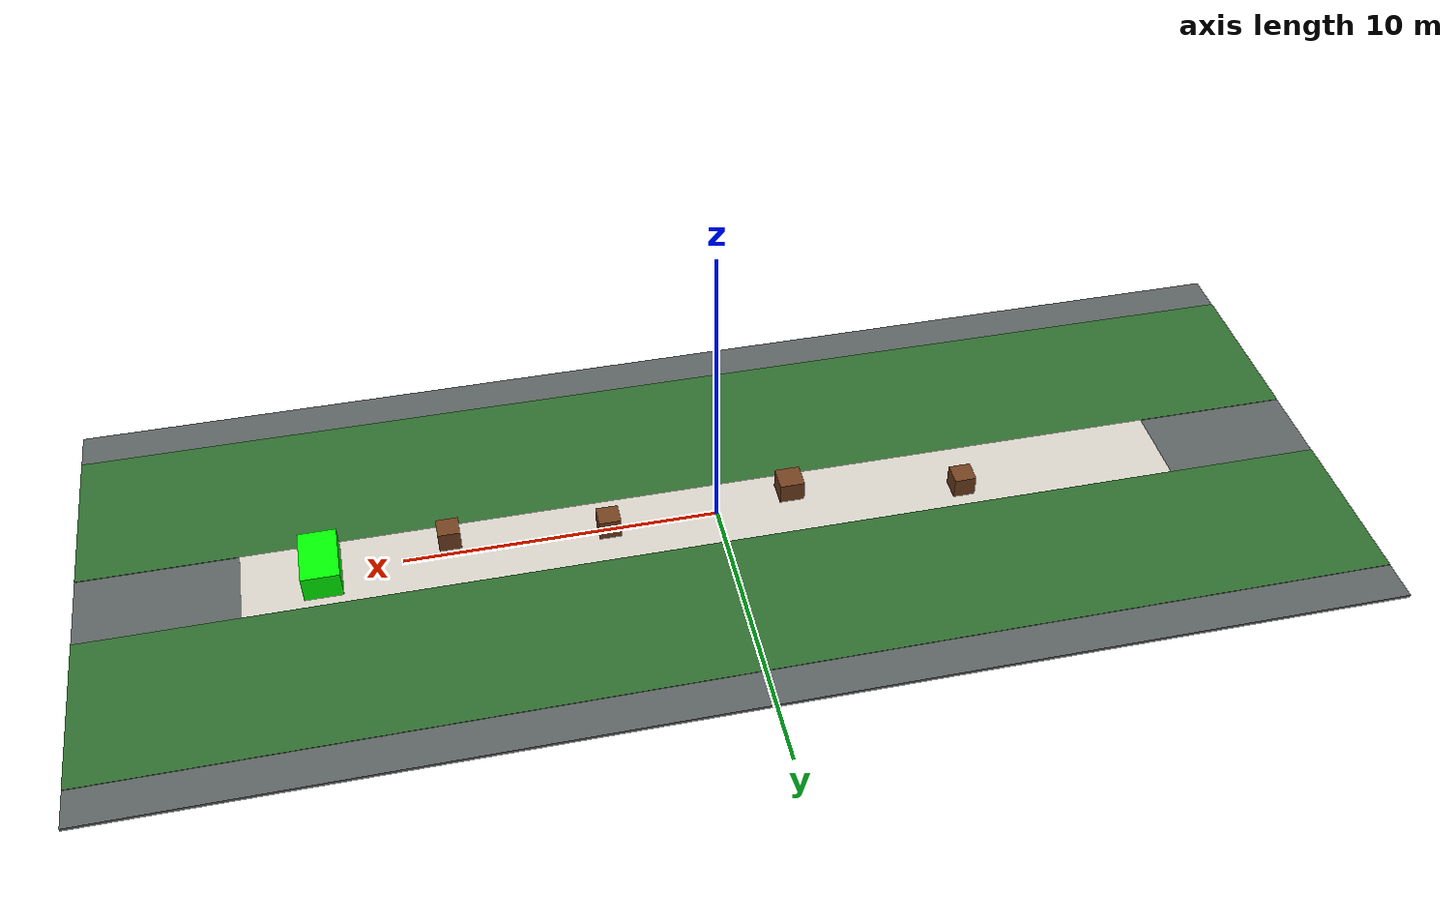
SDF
<?xml version="1.0"?>
<sdf version="1.10">
  <world name="mini_sidewalk">
    <gravity>0 0 -9.8</gravity>
    <magnetic_field>6e-06 2.3e-05 -4.2e-05</magnetic_field>
    <atmosphere type="adiabatic"/>

    <scene>
      <ambient>0.70 0.70 0.70 1</ambient>
      <background>0.82 0.90 0.98 1</background>
      <shadows>true</shadows>
    </scene>

    <plugin filename="gz-sim-physics-system" name="gz::sim::systems::Physics"/>
    <plugin filename="gz-sim-contact-system" name="gz::sim::systems::Contact"/>
    <plugin filename="gz-sim-user-commands-system" name="gz::sim::systems::UserCommands"/>
    <plugin filename="gz-sim-scene-broadcaster-system" name="gz::sim::systems::SceneBroadcaster"/>
    <plugin filename="gz-sim-sensors-system" name="gz::sim::systems::Sensors">
      <render_engine>ogre2</render_engine>
    </plugin>

    <light name="sun" type="directional">
      <cast_shadows>true</cast_shadows>
      <pose>0 0 20 0 0 0</pose>
      <diffuse>0.95 0.95 0.95 1</diffuse>
      <specular>0.25 0.25 0.25 1</specular>
      <direction>-0.35 0.15 -0.92</direction>
    </light>

    <!-- Large flat base so the sidewalk, grass, and obstacles all sit flush. -->
    <model name="terrain">
      <static>true</static>
      <link name="link">
        <collision name="collision">
          <pose>0 0 -0.05 0 0 0</pose>
          <geometry>
            <box>
              <size>40 16 0.1</size>
            </box>
          </geometry>
        </collision>
        <visual name="visual">
          <pose>0 0 -0.05 0 0 0</pose>
          <geometry>
            <box>
              <size>40 16 0.1</size>
            </box>
          </geometry>
          <material>
            <ambient>0.36 0.38 0.38 1</ambient>
            <diffuse>0.36 0.38 0.38 1</diffuse>
          </material>
        </visual>
      </link>
    </model>

    <!-- The training corridor: goal coverage is measured by how much of the bright green block fills the RGB view. -->
    <model name="sidewalk">
      <static>true</static>
      <pose>0 0 0.01 0 0 0</pose>
      <link name="link">
        <collision name="collision">
          <geometry>
            <box>
              <size>30 2.6 0.02</size>
            </box>
          </geometry>
        </collision>
        <visual name="visual">
          <geometry>
            <box>
              <size>30 2.6 0.02</size>
            </box>
          </geometry>
          <material>
            <ambient>0.84 0.82 0.78 1</ambient>
            <diffuse>0.84 0.82 0.78 1</diffuse>
          </material>
        </visual>
      </link>
    </model>

    <!-- Flush terminal regions on both sides so leaving the sidewalk is unambiguous. -->
    <model name="grass_left">
      <static>true</static>
      <pose>0 -4.0 0.01 0 0 0</pose>
      <link name="link">
        <collision name="collision">
          <geometry>
            <box>
              <size>40 5.4 0.02</size>
            </box>
          </geometry>
        </collision>
        <sensor name="terminal_contact" type="contact">
          <always_on>true</always_on>
          <update_rate>100</update_rate>
          <topic>/jackal_sidewalk/sim/contacts/grass_left</topic>
          <contact>
            <collision>collision</collision>
          </contact>
        </sensor>
        <visual name="visual">
          <geometry>
            <box>
              <size>40 5.4 0.02</size>
            </box>
          </geometry>
          <material>
            <ambient>0.18 0.42 0.18 1</ambient>
            <diffuse>0.18 0.42 0.18 1</diffuse>
          </material>
        </visual>
      </link>
      <plugin filename="gz-sim-touchplugin-system" name="gz::sim::systems::TouchPlugin">
        <target>jackal_sidewalk/robot</target>
        <namespace>jackal_sidewalk/sim/touched/grass_left</namespace>
        <time>0.001</time>
        <enabled>true</enabled>
      </plugin>
    </model>

    <model name="grass_right">
      <static>true</static>
      <pose>0 4.0 0.01 0 0 0</pose>
      <link name="link">
        <collision name="collision">
          <geometry>
            <box>
              <size>40 5.4 0.02</size>
            </box>
          </geometry>
        </collision>
        <sensor name="terminal_contact" type="contact">
          <always_on>true</always_on>
          <update_rate>100</update_rate>
          <topic>/jackal_sidewalk/sim/contacts/grass_right</topic>
          <contact>
            <collision>collision</collision>
          </contact>
        </sensor>
        <visual name="visual">
          <geometry>
            <box>
              <size>40 5.4 0.02</size>
            </box>
          </geometry>
          <material>
            <ambient>0.18 0.42 0.18 1</ambient>
            <diffuse>0.18 0.42 0.18 1</diffuse>
          </material>
        </visual>
      </link>
      <plugin filename="gz-sim-touchplugin-system" name="gz::sim::systems::TouchPlugin">
        <target>jackal_sidewalk/robot</target>
        <namespace>jackal_sidewalk/sim/touched/grass_right</namespace>
        <time>0.001</time>
        <enabled>true</enabled>
      </plugin>
    </model>

    <!-- Simple visual goal block; success is determined only by RGB coverage of this marker. -->
    <model name="goal_block">
      <static>true</static>
      <pose>12.5 0 0.45 0 0 0</pose>
      <link name="link">
        <visual name="visual">
          <geometry>
            <box>
              <size>1.2 2.0 0.9</size>
            </box>
          </geometry>
          <material>
            <ambient>0.00 1.00 0.00 1</ambient>
            <diffuse>0.00 1.00 0.00 1</diffuse>
          </material>
        </visual>
      </link>
    </model>

    <!-- Brown collision boxes are the only discrete obstacles in the simplified task. -->
    <model name="box_01">
      <static>true</static>
      <pose>-8.0 0.55 0.35 0 0 0</pose>
      <link name="link">
        <collision name="collision">
          <geometry>
            <box>
              <size>0.7 0.7 0.7</size>
            </box>
          </geometry>
        </collision>
        <sensor name="terminal_contact" type="contact">
          <always_on>true</always_on>
          <update_rate>100</update_rate>
          <topic>/jackal_sidewalk/sim/contacts/box_01</topic>
          <contact>
            <collision>collision</collision>
          </contact>
        </sensor>
        <visual name="visual">
          <geometry>
            <box>
              <size>0.7 0.7 0.7</size>
            </box>
          </geometry>
          <material>
            <ambient>0.45 0.25 0.12 1</ambient>
            <diffuse>0.45 0.25 0.12 1</diffuse>
          </material>
        </visual>
      </link>
      <plugin filename="gz-sim-touchplugin-system" name="gz::sim::systems::TouchPlugin">
        <target>jackal_sidewalk/robot</target>
        <namespace>jackal_sidewalk/sim/touched/box_01</namespace>
        <time>0.001</time>
        <enabled>true</enabled>
      </plugin>
    </model>

    <model name="box_02">
      <static>true</static>
      <pose>-2.5 -0.45 0.35 0 0 0</pose>
      <link name="link">
        <collision name="collision">
          <geometry>
            <box>
              <size>0.8 0.8 0.7</size>
            </box>
          </geometry>
        </collision>
        <sensor name="terminal_contact" type="contact">
          <always_on>true</always_on>
          <update_rate>100</update_rate>
          <topic>/jackal_sidewalk/sim/contacts/box_02</topic>
          <contact>
            <collision>collision</collision>
          </contact>
        </sensor>
        <visual name="visual">
          <geometry>
            <box>
              <size>0.8 0.8 0.7</size>
            </box>
          </geometry>
          <material>
            <ambient>0.45 0.25 0.12 1</ambient>
            <diffuse>0.45 0.25 0.12 1</diffuse>
          </material>
        </visual>
      </link>
      <plugin filename="gz-sim-touchplugin-system" name="gz::sim::systems::TouchPlugin">
        <target>jackal_sidewalk/robot</target>
        <namespace>jackal_sidewalk/sim/touched/box_02</namespace>
        <time>0.001</time>
        <enabled>true</enabled>
      </plugin>
    </model>

    <model name="box_03">
      <static>true</static>
      <pose>3.5 0.0 0.35 0 0 0</pose>
      <link name="link">
        <collision name="collision">
          <geometry>
            <box>
              <size>0.7 0.7 0.7</size>
            </box>
          </geometry>
        </collision>
        <sensor name="terminal_contact" type="contact">
          <always_on>true</always_on>
          <update_rate>100</update_rate>
          <topic>/jackal_sidewalk/sim/contacts/box_03</topic>
          <contact>
            <collision>collision</collision>
          </contact>
        </sensor>
        <visual name="visual">
          <geometry>
            <box>
              <size>0.7 0.7 0.7</size>
            </box>
          </geometry>
          <material>
            <ambient>0.45 0.25 0.12 1</ambient>
            <diffuse>0.45 0.25 0.12 1</diffuse>
          </material>
        </visual>
      </link>
      <plugin filename="gz-sim-touchplugin-system" name="gz::sim::systems::TouchPlugin">
        <target>jackal_sidewalk/robot</target>
        <namespace>jackal_sidewalk/sim/touched/box_03</namespace>
        <time>0.001</time>
        <enabled>true</enabled>
      </plugin>
    </model>

    <model name="box_04">
      <static>true</static>
      <pose>8.5 -0.55 0.35 0 0 0</pose>
      <link name="link">
        <collision name="collision">
          <geometry>
            <box>
              <size>0.7 0.7 0.7</size>
            </box>
          </geometry>
        </collision>
        <sensor name="terminal_contact" type="contact">
          <always_on>true</always_on>
          <update_rate>100</update_rate>
          <topic>/jackal_sidewalk/sim/contacts/box_04</topic>
          <contact>
            <collision>collision</collision>
          </contact>
        </sensor>
        <visual name="visual">
          <geometry>
            <box>
              <size>0.7 0.7 0.7</size>
            </box>
          </geometry>
          <material>
            <ambient>0.45 0.25 0.12 1</ambient>
            <diffuse>0.45 0.25 0.12 1</diffuse>
          </material>
        </visual>
      </link>
      <plugin filename="gz-sim-touchplugin-system" name="gz::sim::systems::TouchPlugin">
        <target>jackal_sidewalk/robot</target>
        <namespace>jackal_sidewalk/sim/touched/box_04</namespace>
        <time>0.001</time>
        <enabled>true</enabled>
      </plugin>
    </model>
  </world>
</sdf>
